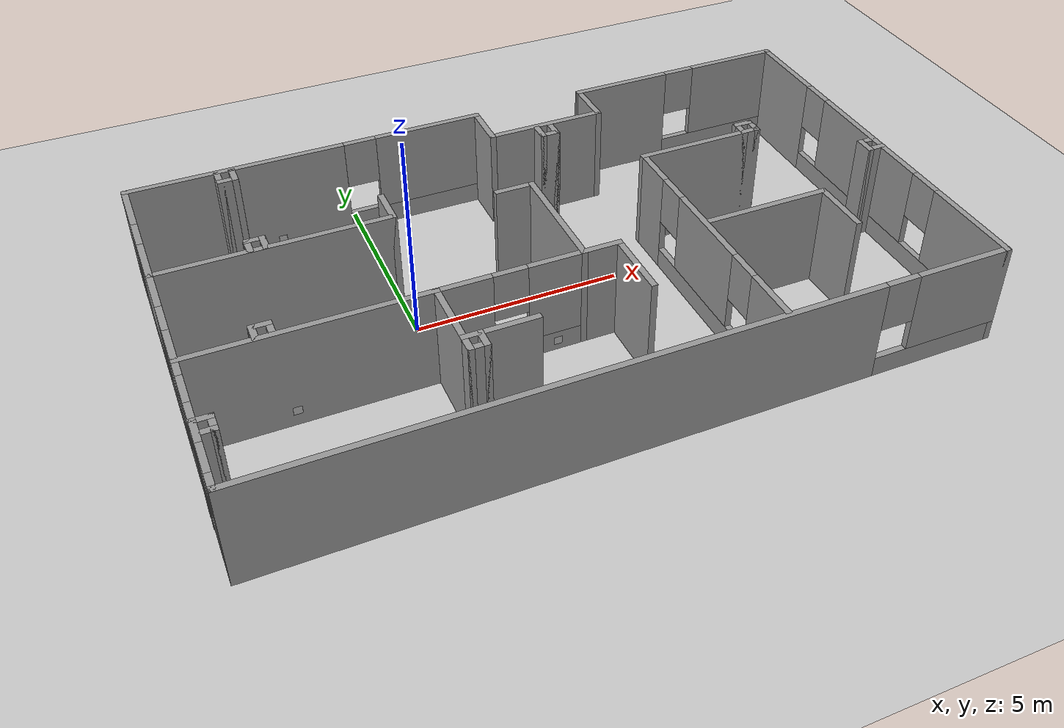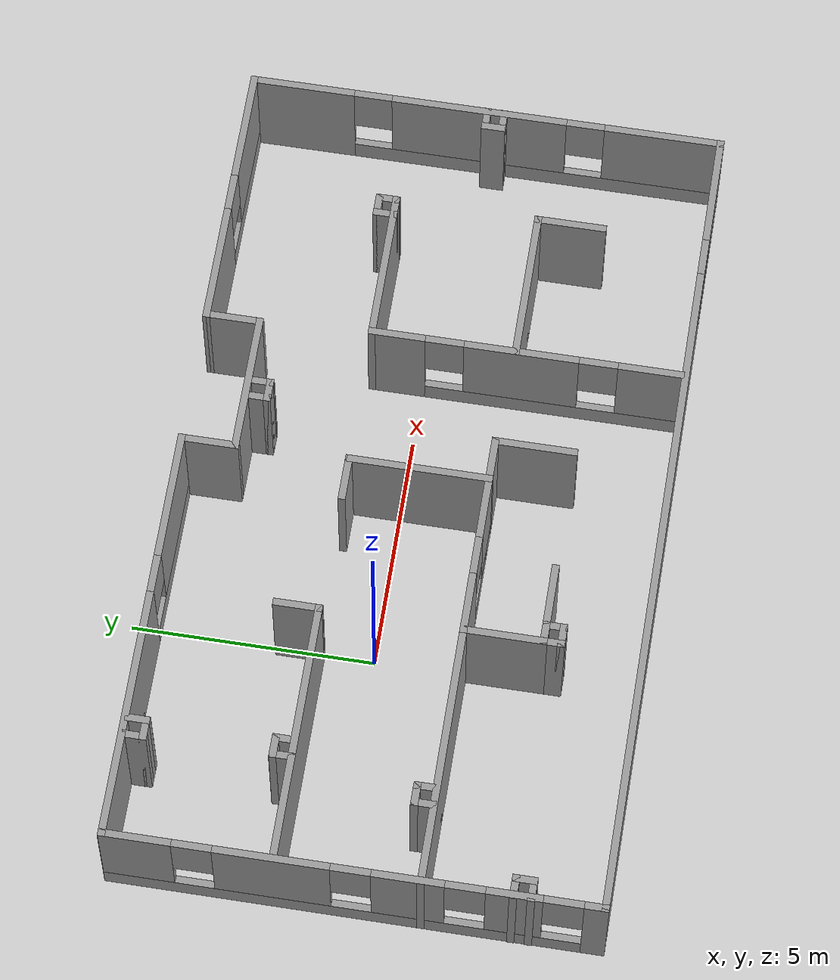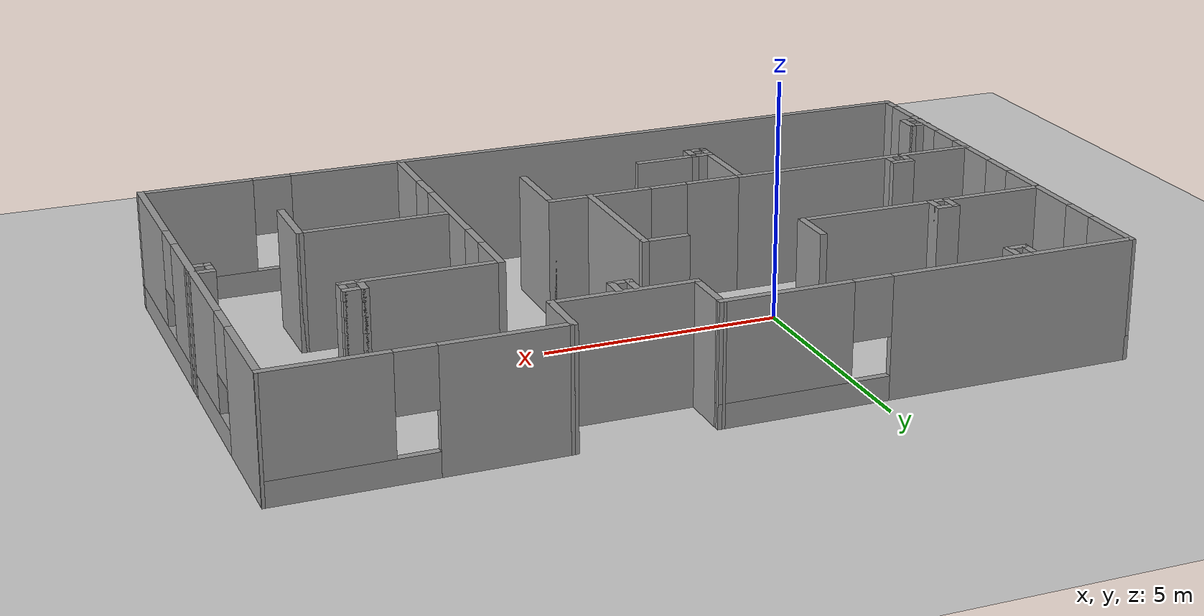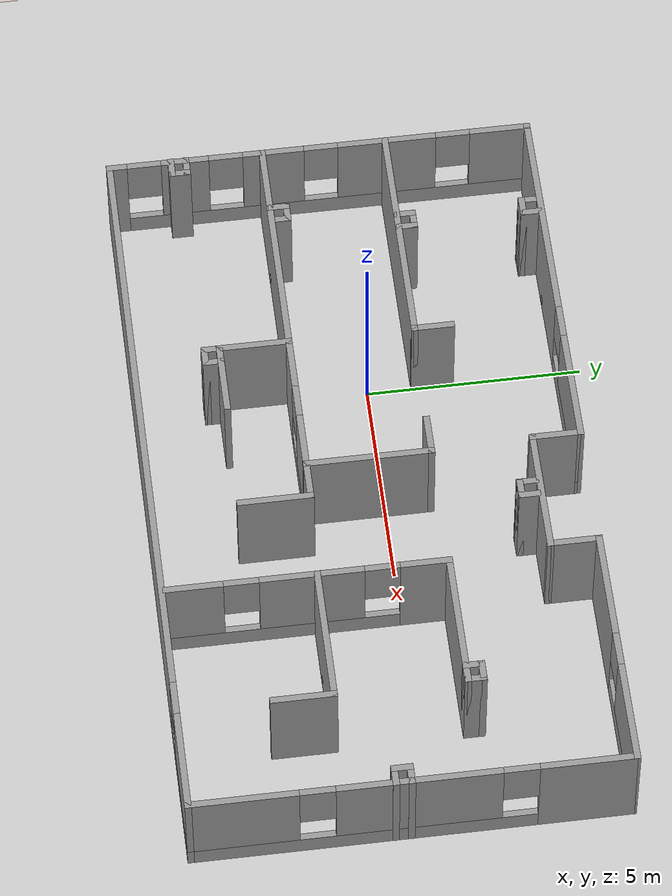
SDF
<sdf version="1.7">
 <world name="default">
  <light name="sun" type="directional">
   <pose>0 0 10 0 -0 0</pose>
   <diffuse>0.8 0.8 0.8 1</diffuse>
   <specular>0.2 0.2 0.2 1</specular>
   <attenuation>
    <range>1000</range>
    <constant>0.9</constant>
    <linear>0.01</linear>
    <quadratic>0.001</quadratic>
   </attenuation>
   <direction>-0.5 0.1 -0.9</direction>
   <spot><inner_angle>0</inner_angle><outer_angle>0</outer_angle><falloff>0</falloff></spot>
  </light>
  <model name="ground_plane">
   <static>1</static>
   <link name="link">
    <collision name="collision">
     <geometry><plane><normal>0 0 1</normal><size>100 100</size></plane></geometry>
     <surface>
      <contact><collide_bitmask>65535</collide_bitmask></contact>
      <friction><ode><mu>100</mu><mu2>50</mu2></ode></friction>
     </surface>
    </collision>
    <visual name="visual">
     <cast_shadows>0</cast_shadows>
     <geometry><plane><normal>0 0 1</normal><size>100 100</size></plane></geometry>
     <material>
      <script><uri>file://media/materials/scripts/gazebo.material</uri><name>Gazebo/Grey</name></script>
     </material>
    </visual>
   </link>
  </model>
  <gravity>0 0 -9.8</gravity>
  <magnetic_field>6e-06 2.3e-05 -4.2e-05</magnetic_field>
  <atmosphere type="adiabatic"/>
  <physics type="ode">
   <max_step_size>0.001</max_step_size>
   <real_time_factor>1</real_time_factor>
   <real_time_update_rate>1000</real_time_update_rate>
  </physics>
  <scene><ambient>0.4 0.4 0.4 1</ambient><background>0.7 0.7 0.7 1</background><shadows>1</shadows></scene>
  <spherical_coordinates>
   <surface_model>EARTH_WGS84</surface_model>
   <latitude_deg>0</latitude_deg>
   <longitude_deg>0</longitude_deg>
   <elevation>0</elevation>
   <heading_deg>0</heading_deg>
  </spherical_coordinates>
  <model name="casa2">
   <pose>3.15765 -0.469645 0 0 -0 0</pose>
   <link name="Wall_100">
    <collision name="Wall_100_Collision">
     <geometry><box><size>0.5 0.15 2.5</size></box></geometry>
     <pose>0 0 1.25 0 -0 0</pose>
    </collision>
    <visual name="Wall_100_Visual">
     <pose>0 0 1.25 0 -0 0</pose>
     <geometry><box><size>0.5 0.15 2.5</size></box></geometry>
     <material>
      <script><uri>file://media/materials/scripts/gazebo.material</uri><name>Gazebo/Grey</name></script>
      <ambient>1 1 1 1</ambient>
     </material>
     <meta><layer>0</layer></meta>
    </visual>
    <pose>8.20725 -0.199047 0 0 -0 -1.5708</pose>
   </link>
   <link name="Wall_101">
    <collision name="Wall_101_Collision">
     <geometry><box><size>0.5 0.15 2.5</size></box></geometry>
     <pose>0 0 1.25 0 -0 0</pose>
    </collision>
    <visual name="Wall_101_Visual">
     <pose>0 0 1.25 0 -0 0</pose>
     <geometry><box><size>0.5 0.15 2.5</size></box></geometry>
     <material>
      <script><uri>file://media/materials/scripts/gazebo.material</uri><name>Gazebo/Grey</name></script>
      <ambient>1 1 1 1</ambient>
     </material>
     <meta><layer>0</layer></meta>
    </visual>
    <pose>8.38226 -0.374047 0 0 -0 0</pose>
   </link>
   <link name="Wall_11">
    <collision name="Wall_11_Collision">
     <geometry><box><size>5.5 0.15 2.5</size></box></geometry>
     <pose>0 0 1.25 0 -0 0</pose>
    </collision>
    <visual name="Wall_11_Visual">
     <pose>0 0 1.25 0 -0 0</pose>
     <geometry><box><size>5.5 0.15 2.5</size></box></geometry>
     <material>
      <script><uri>file://media/materials/scripts/gazebo.material</uri><name>Gazebo/Grey</name></script>
      <ambient>1 1 1 1</ambient>
     </material>
     <meta><layer>0</layer></meta>
    </visual>
    <pose>-5.87087 1.56416 0 0 -0 0</pose>
   </link>
   <link name="Wall_12">
    <collision name="Wall_12_Collision">
     <geometry><box><size>1 0.15 2.5</size></box></geometry>
     <pose>0 0 1.25 0 -0 0</pose>
    </collision>
    <visual name="Wall_12_Visual">
     <pose>0 0 1.25 0 -0 0</pose>
     <geometry><box><size>1 0.15 2.5</size></box></geometry>
     <material>
      <script><uri>file://media/materials/scripts/gazebo.material</uri><name>Gazebo/Grey</name></script>
      <ambient>1 1 1 1</ambient>
     </material>
     <meta><layer>0</layer></meta>
    </visual>
    <pose>-3.19587 1.98916 0 0 -0 1.5708</pose>
   </link>
   <link name="Wall_14">
    <collision name="Wall_14_Collision">
     <geometry><box><size>5.5 0.15 2.5</size></box></geometry>
     <pose>0 0 1.25 0 -0 0</pose>
    </collision>
    <visual name="Wall_14_Visual">
     <pose>0 0 1.25 0 -0 0</pose>
     <geometry><box><size>5.5 0.15 2.5</size></box></geometry>
     <material>
      <script><uri>file://media/materials/scripts/gazebo.material</uri><name>Gazebo/Grey</name></script>
      <ambient>1 1 1 1</ambient>
     </material>
     <meta><layer>0</layer></meta>
    </visual>
    <pose>-5.87087 -1.33526 0 0 -0 0</pose>
   </link>
   <link name="Wall_15">
    <collision name="Wall_15_Collision">
     <geometry><box><size>1.75 0.15 2.5</size></box></geometry>
     <pose>0 0 1.25 0 -0 0</pose>
    </collision>
    <visual name="Wall_15_Visual">
     <pose>0 0 1.25 0 -0 0</pose>
     <geometry><box><size>1.75 0.15 2.5</size></box></geometry>
     <material>
      <script><uri>file://media/materials/scripts/gazebo.material</uri><name>Gazebo/Grey</name></script>
      <ambient>1 1 1 1</ambient>
     </material>
     <meta><layer>0</layer></meta>
    </visual>
    <pose>-3.19587 -2.13526 0 0 -0 -1.5708</pose>
   </link>
   <link name="Wall_2">
    <pose>-8.54587 -0.001289 0 0 -0 1.5708</pose>
    <visual name="Wall_2_Visual_0">
     <pose>-4.75843 0 1.25 0 -0 0</pose>
     <geometry><box><size>0.483134 0.15 2.5</size></box></geometry>
     <material>
      <script><uri>file://media/materials/scripts/gazebo.material</uri><name>Gazebo/Grey</name></script>
      <ambient>1 1 1 1</ambient>
     </material>
     <meta><layer>0</layer></meta>
    </visual>
    <collision name="Wall_2_Collision_0">
     <geometry><box><size>0.483134 0.15 2.5</size></box></geometry>
     <pose>-4.75843 0 1.25 0 -0 0</pose>
    </collision>
    <visual name="Wall_2_Visual_1">
     <pose>0.241567 0 0.25 0 -0 0</pose>
     <geometry><box><size>9.51687 0.15 0.5</size></box></geometry>
     <material>
      <script><uri>file://media/materials/scripts/gazebo.material</uri><name>Gazebo/Grey</name></script>
      <ambient>1 1 1 1</ambient>
     </material>
     <meta><layer>0</layer></meta>
    </visual>
    <collision name="Wall_2_Collision_1">
     <geometry><box><size>9.51687 0.15 0.5</size></box></geometry>
     <pose>0.241567 0 0.25 0 -0 0</pose>
    </collision>
    <visual name="Wall_2_Visual_2">
     <pose>-3.15695 0 1.5 0 -0 0</pose>
     <geometry><box><size>1.11984 0.15 2</size></box></geometry>
     <material>
      <script><uri>file://media/materials/scripts/gazebo.material</uri><name>Gazebo/Grey</name></script>
      <ambient>1 1 1 1</ambient>
     </material>
     <meta><layer>0</layer></meta>
    </visual>
    <collision name="Wall_2_Collision_2">
     <geometry><box><size>1.11984 0.15 2</size></box></geometry>
     <pose>-3.15695 0 1.5 0 -0 0</pose>
    </collision>
    <visual name="Wall_2_Visual_3">
     <pose>-1.07597 0 1.5 0 -0 0</pose>
     <geometry><box><size>1.44211 0.15 2</size></box></geometry>
     <material>
      <script><uri>file://media/materials/scripts/gazebo.material</uri><name>Gazebo/Grey</name></script>
      <ambient>1 1 1 1</ambient>
     </material>
     <meta><layer>0</layer></meta>
    </visual>
    <collision name="Wall_2_Collision_3">
     <geometry><box><size>1.44211 0.15 2</size></box></geometry>
     <pose>-1.07597 0 1.5 0 -0 0</pose>
    </collision>
    <visual name="Wall_2_Visual_4">
     <pose>1.60389 0 1.5 0 -0 0</pose>
     <geometry><box><size>2.3176 0.15 2</size></box></geometry>
     <material>
      <script><uri>file://media/materials/scripts/gazebo.material</uri><name>Gazebo/Grey</name></script>
      <ambient>1 1 1 1</ambient>
     </material>
     <meta><layer>0</layer></meta>
    </visual>
    <collision name="Wall_2_Collision_4">
     <geometry><box><size>2.3176 0.15 2</size></box></geometry>
     <pose>1.60389 0 1.5 0 -0 0</pose>
    </collision>
    <visual name="Wall_2_Visual_5">
     <pose>4.28134 0 1.5 0 -0 0</pose>
     <geometry><box><size>1.43731 0.15 2</size></box></geometry>
     <material>
      <script><uri>file://media/materials/scripts/gazebo.material</uri><name>Gazebo/Grey</name></script>
      <ambient>1 1 1 1</ambient>
     </material>
     <meta><layer>0</layer></meta>
    </visual>
    <collision name="Wall_2_Collision_5">
     <geometry><box><size>1.43731 0.15 2</size></box></geometry>
     <pose>4.28134 0 1.5 0 -0 0</pose>
    </collision>
    <visual name="Wall_2_Visual_6">
     <pose>-4.11687 0 1.9 0 -0 0</pose>
     <geometry><box><size>0.8 0.15 1.2</size></box></geometry>
     <material>
      <script><uri>file://media/materials/scripts/gazebo.material</uri><name>Gazebo/Grey</name></script>
      <ambient>1 1 1 1</ambient>
     </material>
     <meta><layer>0</layer></meta>
    </visual>
    <collision name="Wall_2_Collision_6">
     <geometry><box><size>0.8 0.15 1.2</size></box></geometry>
     <pose>-4.11687 0 1.9 0 -0 0</pose>
    </collision>
    <visual name="Wall_2_Visual_7">
     <pose>-2.19703 0 1.9 0 -0 0</pose>
     <geometry><box><size>0.8 0.15 1.2</size></box></geometry>
     <material>
      <script><uri>file://media/materials/scripts/gazebo.material</uri><name>Gazebo/Grey</name></script>
      <ambient>1 1 1 1</ambient>
     </material>
     <meta><layer>0</layer></meta>
    </visual>
    <collision name="Wall_2_Collision_7">
     <geometry><box><size>0.8 0.15 1.2</size></box></geometry>
     <pose>-2.19703 0 1.9 0 -0 0</pose>
    </collision>
    <visual name="Wall_2_Visual_8">
     <pose>0.045084 0 1.9 0 -0 0</pose>
     <geometry><box><size>0.8 0.15 1.2</size></box></geometry>
     <material>
      <script><uri>file://media/materials/scripts/gazebo.material</uri><name>Gazebo/Grey</name></script>
      <ambient>1 1 1 1</ambient>
     </material>
     <meta><layer>0</layer></meta>
    </visual>
    <collision name="Wall_2_Collision_8">
     <geometry><box><size>0.8 0.15 1.2</size></box></geometry>
     <pose>0.045084 0 1.9 0 -0 0</pose>
    </collision>
    <visual name="Wall_2_Visual_9">
     <pose>3.16269 0 1.9 0 -0 0</pose>
     <geometry><box><size>0.8 0.15 1.2</size></box></geometry>
     <material>
      <script><uri>file://media/materials/scripts/gazebo.material</uri><name>Gazebo/Grey</name></script>
      <ambient>1 1 1 1</ambient>
     </material>
     <meta><layer>0</layer></meta>
    </visual>
    <collision name="Wall_2_Collision_9">
     <geometry><box><size>0.8 0.15 1.2</size></box></geometry>
     <pose>3.16269 0 1.9 0 -0 0</pose>
    </collision>
   </link>
   <link name="Wall_28">
    <pose>-1.52087 -1.33526 0 0 -0 0</pose>
    <visual name="Wall_28_Visual_0">
     <pose>-1.0938 0 1.25 0 -0 0</pose>
     <geometry><box><size>1.3124 0.15 2.5</size></box></geometry>
     <material>
      <script><uri>file://media/materials/scripts/gazebo.material</uri><name>Gazebo/Grey</name></script>
      <ambient>1 1 1 1</ambient>
     </material>
     <meta><layer>0</layer></meta>
    </visual>
    <collision name="Wall_28_Collision_0">
     <geometry><box><size>1.3124 0.15 2.5</size></box></geometry>
     <pose>-1.0938 0 1.25 0 -0 0</pose>
    </collision>
    <visual name="Wall_28_Visual_1">
     <pose>0.6562 0 0.25 0 -0 0</pose>
     <geometry><box><size>2.1876 0.15 0.5</size></box></geometry>
     <material>
      <script><uri>file://media/materials/scripts/gazebo.material</uri><name>Gazebo/Grey</name></script>
      <ambient>1 1 1 1</ambient>
     </material>
     <meta><layer>0</layer></meta>
    </visual>
    <collision name="Wall_28_Collision_1">
     <geometry><box><size>2.1876 0.15 0.5</size></box></geometry>
     <pose>0.6562 0 0.25 0 -0 0</pose>
    </collision>
    <visual name="Wall_28_Visual_2">
     <pose>1.0562 0 1.5 0 -0 0</pose>
     <geometry><box><size>1.3876 0.15 2</size></box></geometry>
     <material>
      <script><uri>file://media/materials/scripts/gazebo.material</uri><name>Gazebo/Grey</name></script>
      <ambient>1 1 1 1</ambient>
     </material>
     <meta><layer>0</layer></meta>
    </visual>
    <collision name="Wall_28_Collision_2">
     <geometry><box><size>1.3876 0.15 2</size></box></geometry>
     <pose>1.0562 0 1.5 0 -0 0</pose>
    </collision>
    <visual name="Wall_28_Visual_3">
     <pose>-0.037599 0 1.9 0 -0 0</pose>
     <geometry><box><size>0.8 0.15 1.2</size></box></geometry>
     <material>
      <script><uri>file://media/materials/scripts/gazebo.material</uri><name>Gazebo/Grey</name></script>
      <ambient>1 1 1 1</ambient>
     </material>
     <meta><layer>0</layer></meta>
    </visual>
    <collision name="Wall_28_Collision_3">
     <geometry><box><size>0.8 0.15 1.2</size></box></geometry>
     <pose>-0.037599 0 1.9 0 -0 0</pose>
    </collision>
   </link>
   <link name="Wall_29">
    <collision name="Wall_29_Collision">
     <geometry><box><size>3 0.15 2.5</size></box></geometry>
     <pose>0 0 1.25 0 -0 0</pose>
    </collision>
    <visual name="Wall_29_Visual">
     <pose>0 0 1.25 0 -0 0</pose>
     <geometry><box><size>3 0.15 2.5</size></box></geometry>
     <material>
      <script><uri>file://media/materials/scripts/gazebo.material</uri><name>Gazebo/Grey</name></script>
      <ambient>1 1 1 1</ambient>
     </material>
     <meta><layer>0</layer></meta>
    </visual>
    <pose>0.154131 0.089738 0 0 -0 1.5708</pose>
   </link>
   <link name="Wall_31">
    <collision name="Wall_31_Collision">
     <geometry><box><size>1.25 0.15 2.5</size></box></geometry>
     <pose>0 0 1.25 0 -0 0</pose>
    </collision>
    <visual name="Wall_31_Visual">
     <pose>0 0 1.25 0 -0 0</pose>
     <geometry><box><size>1.25 0.15 2.5</size></box></geometry>
     <material>
      <script><uri>file://media/materials/scripts/gazebo.material</uri><name>Gazebo/Grey</name></script>
      <ambient>1 1 1 1</ambient>
     </material>
     <meta><layer>0</layer></meta>
    </visual>
    <pose>0.08046 4.37625 0 0 -0 -1.5708</pose>
   </link>
   <link name="Wall_35">
    <pose>3.07601 -1.64851 0 0 -0 -1.5708</pose>
    <visual name="Wall_35_Visual_0">
     <pose>-2.66037 0 1.25 0 -0 0</pose>
     <geometry><box><size>1.17926 0.15 2.5</size></box></geometry>
     <material>
      <script><uri>file://media/materials/scripts/gazebo.material</uri><name>Gazebo/Grey</name></script>
      <ambient>1 1 1 1</ambient>
     </material>
     <meta><layer>0</layer></meta>
    </visual>
    <collision name="Wall_35_Collision_0">
     <geometry><box><size>1.17926 0.15 2.5</size></box></geometry>
     <pose>-2.66037 0 1.25 0 -0 0</pose>
    </collision>
    <visual name="Wall_35_Visual_1">
     <pose>0.589632 0 0.25 0 -0 0</pose>
     <geometry><box><size>5.32074 0.15 0.5</size></box></geometry>
     <material>
      <script><uri>file://media/materials/scripts/gazebo.material</uri><name>Gazebo/Grey</name></script>
      <ambient>1 1 1 1</ambient>
     </material>
     <meta><layer>0</layer></meta>
    </visual>
    <collision name="Wall_35_Collision_1">
     <geometry><box><size>5.32074 0.15 0.5</size></box></geometry>
     <pose>0.589632 0 0.25 0 -0 0</pose>
    </collision>
    <visual name="Wall_35_Visual_2">
     <pose>-0.08629 0 1.5 0 -0 0</pose>
     <geometry><box><size>2.36889 0.15 2</size></box></geometry>
     <material>
      <script><uri>file://media/materials/scripts/gazebo.material</uri><name>Gazebo/Grey</name></script>
      <ambient>1 1 1 1</ambient>
     </material>
     <meta><layer>0</layer></meta>
    </visual>
    <collision name="Wall_35_Collision_2">
     <geometry><box><size>2.36889 0.15 2</size></box></geometry>
     <pose>-0.08629 0 1.5 0 -0 0</pose>
    </collision>
    <visual name="Wall_35_Visual_3">
     <pose>2.57408 0 1.5 0 -0 0</pose>
     <geometry><box><size>1.35184 0.15 2</size></box></geometry>
     <material>
      <script><uri>file://media/materials/scripts/gazebo.material</uri><name>Gazebo/Grey</name></script>
      <ambient>1 1 1 1</ambient>
     </material>
     <meta><layer>0</layer></meta>
    </visual>
    <collision name="Wall_35_Collision_3">
     <geometry><box><size>1.35184 0.15 2</size></box></geometry>
     <pose>2.57408 0 1.5 0 -0 0</pose>
    </collision>
    <visual name="Wall_35_Visual_4">
     <pose>-1.67074 0 1.9 0 -0 0</pose>
     <geometry><box><size>0.8 0.15 1.2</size></box></geometry>
     <material>
      <script><uri>file://media/materials/scripts/gazebo.material</uri><name>Gazebo/Grey</name></script>
      <ambient>1 1 1 1</ambient>
     </material>
     <meta><layer>0</layer></meta>
    </visual>
    <collision name="Wall_35_Collision_4">
     <geometry><box><size>0.8 0.15 1.2</size></box></geometry>
     <pose>-1.67074 0 1.9 0 -0 0</pose>
    </collision>
    <visual name="Wall_35_Visual_5">
     <pose>1.49816 0 1.9 0 -0 0</pose>
     <geometry><box><size>0.8 0.15 1.2</size></box></geometry>
     <material>
      <script><uri>file://media/materials/scripts/gazebo.material</uri><name>Gazebo/Grey</name></script>
      <ambient>1 1 1 1</ambient>
     </material>
     <meta><layer>0</layer></meta>
    </visual>
    <collision name="Wall_35_Collision_5">
     <geometry><box><size>0.8 0.15 1.2</size></box></geometry>
     <pose>1.49816 0 1.9 0 -0 0</pose>
    </collision>
   </link>
   <link name="Wall_38">
    <collision name="Wall_38_Collision">
     <geometry><box><size>1 0.15 2.5</size></box></geometry>
     <pose>0 0 1.25 0 -0 0</pose>
    </collision>
    <visual name="Wall_38_Visual">
     <pose>0 0 1.25 0 -0 0</pose>
     <geometry><box><size>1 0.15 2.5</size></box></geometry>
     <material>
      <script><uri>file://media/materials/scripts/gazebo.material</uri><name>Gazebo/Grey</name></script>
      <ambient>1 1 1 1</ambient>
     </material>
     <meta><layer>0</layer></meta>
    </visual>
    <pose>0.579131 -1.33526 0 0 -0 0</pose>
   </link>
   <link name="Wall_39">
    <collision name="Wall_39_Collision">
     <geometry><box><size>1.75 0.15 2.5</size></box></geometry>
     <pose>0 0 1.25 0 -0 0</pose>
    </collision>
    <visual name="Wall_39_Visual">
     <pose>0 0 1.25 0 -0 0</pose>
     <geometry><box><size>1.75 0.15 2.5</size></box></geometry>
     <material>
      <script><uri>file://media/materials/scripts/gazebo.material</uri><name>Gazebo/Grey</name></script>
      <ambient>1 1 1 1</ambient>
     </material>
     <meta><layer>0</layer></meta>
    </visual>
    <pose>1.00413 -2.13526 0 0 -0 -1.5708</pose>
   </link>
   <link name="Wall_41">
    <collision name="Wall_41_Collision">
     <geometry><box><size>1.75 0.15 2.5</size></box></geometry>
     <pose>0 0 1.25 0 -0 0</pose>
    </collision>
    <visual name="Wall_41_Visual">
     <pose>0 0 1.25 0 -0 0</pose>
     <geometry><box><size>1.75 0.15 2.5</size></box></geometry>
     <material>
      <script><uri>file://media/materials/scripts/gazebo.material</uri><name>Gazebo/Grey</name></script>
      <ambient>1 1 1 1</ambient>
     </material>
     <meta><layer>0</layer></meta>
    </visual>
    <pose>-2.39587 -2.93526 0 0 -0 0</pose>
   </link>
   <link name="Wall_43">
    <collision name="Wall_43_Collision">
     <geometry><box><size>3.25 0.15 2.5</size></box></geometry>
     <pose>0 0 1.25 0 -0 0</pose>
    </collision>
    <visual name="Wall_43_Visual">
     <pose>0 0 1.25 0 -0 0</pose>
     <geometry><box><size>3.25 0.15 2.5</size></box></geometry>
     <material>
      <script><uri>file://media/materials/scripts/gazebo.material</uri><name>Gazebo/Grey</name></script>
      <ambient>1 1 1 1</ambient>
     </material>
     <meta><layer>0</layer></meta>
    </visual>
    <pose>4.62601 1.52649 0 0 -0 0</pose>
   </link>
   <link name="Wall_45">
    <collision name="Wall_45_Collision">
     <geometry><box><size>1 0.15 2.5</size></box></geometry>
     <pose>0 0 1.25 0 -0 0</pose>
    </collision>
    <visual name="Wall_45_Visual">
     <pose>0 0 1.25 0 -0 0</pose>
     <geometry><box><size>1 0.15 2.5</size></box></geometry>
     <material>
      <script><uri>file://media/materials/scripts/gazebo.material</uri><name>Gazebo/Grey</name></script>
      <ambient>1 1 1 1</ambient>
     </material>
     <meta><layer>0</layer></meta>
    </visual>
    <pose>-0.270869 1.51474 0 0 -0 3.14159</pose>
   </link>
   <link name="Wall_54">
    <collision name="Wall_54_Collision">
     <geometry><box><size>3 0.15 2.5</size></box></geometry>
     <pose>0 0 1.25 0 -0 0</pose>
    </collision>
    <visual name="Wall_54_Visual">
     <pose>0 0 1.25 0 -0 0</pose>
     <geometry><box><size>3 0.15 2.5</size></box></geometry>
     <material>
      <script><uri>file://media/materials/scripts/gazebo.material</uri><name>Gazebo/Grey</name></script>
      <ambient>1 1 1 1</ambient>
     </material>
     <meta><layer>0</layer></meta>
    </visual>
    <pose>1.50546 3.82626 0 0 -0 0</pose>
   </link>
   <link name="Wall_55">
    <collision name="Wall_55_Collision">
     <geometry><box><size>1.25 0.15 2.5</size></box></geometry>
     <pose>0 0 1.25 0 -0 0</pose>
    </collision>
    <visual name="Wall_55_Visual">
     <pose>0 0 1.25 0 -0 0</pose>
     <geometry><box><size>1.25 0.15 2.5</size></box></geometry>
     <material>
      <script><uri>file://media/materials/scripts/gazebo.material</uri><name>Gazebo/Grey</name></script>
      <ambient>1 1 1 1</ambient>
     </material>
     <meta><layer>0</layer></meta>
    </visual>
    <pose>2.93046 4.37625 0 0 -0 1.5708</pose>
   </link>
   <link name="Wall_57">
    <pose>-4.2327 4.92498 0 0 -0 0.000295</pose>
    <visual name="Wall_57_Visual_0">
     <pose>-1.76245 0 1.25 0 -0 0</pose>
     <geometry><box><size>5.25143 0.15 2.5</size></box></geometry>
     <material>
      <script><uri>file://media/materials/scripts/gazebo.material</uri><name>Gazebo/Grey</name></script>
      <ambient>1 1 1 1</ambient>
     </material>
     <meta><layer>0</layer></meta>
    </visual>
    <collision name="Wall_57_Collision_0">
     <geometry><box><size>5.25143 0.15 2.5</size></box></geometry>
     <pose>-1.76245 0 1.25 0 -0 0</pose>
    </collision>
    <visual name="Wall_57_Visual_1">
     <pose>2.62571 0 0.25 0 -0 0</pose>
     <geometry><box><size>3.5249 0.15 0.5</size></box></geometry>
     <material>
      <script><uri>file://media/materials/scripts/gazebo.material</uri><name>Gazebo/Grey</name></script>
      <ambient>1 1 1 1</ambient>
     </material>
     <meta><layer>0</layer></meta>
    </visual>
    <collision name="Wall_57_Collision_1">
     <geometry><box><size>3.5249 0.15 0.5</size></box></geometry>
     <pose>2.62571 0 0.25 0 -0 0</pose>
    </collision>
    <visual name="Wall_57_Visual_2">
     <pose>3.02571 0 1.5 0 -0 0</pose>
     <geometry><box><size>2.7249 0.15 2</size></box></geometry>
     <material>
      <script><uri>file://media/materials/scripts/gazebo.material</uri><name>Gazebo/Grey</name></script>
      <ambient>1 1 1 1</ambient>
     </material>
     <meta><layer>0</layer></meta>
    </visual>
    <collision name="Wall_57_Collision_2">
     <geometry><box><size>2.7249 0.15 2</size></box></geometry>
     <pose>3.02571 0 1.5 0 -0 0</pose>
    </collision>
    <visual name="Wall_57_Visual_3">
     <pose>1.26326 0 1.9 0 -0 0</pose>
     <geometry><box><size>0.8 0.15 1.2</size></box></geometry>
     <material>
      <script><uri>file://media/materials/scripts/gazebo.material</uri><name>Gazebo/Grey</name></script>
      <ambient>1 1 1 1</ambient>
     </material>
     <meta><layer>0</layer></meta>
    </visual>
    <collision name="Wall_57_Collision_3">
     <geometry><box><size>0.8 0.15 1.2</size></box></geometry>
     <pose>1.26326 0 1.9 0 -0 0</pose>
    </collision>
   </link>
   <link name="Wall_59">
    <pose>5.7423 4.92498 0 0 -0 -0.000452</pose>
    <visual name="Wall_59_Visual_0">
     <pose>-1.60453 0 1.25 0 -0 0</pose>
     <geometry><box><size>2.56462 0.15 2.5</size></box></geometry>
     <material>
      <script><uri>file://media/materials/scripts/gazebo.material</uri><name>Gazebo/Grey</name></script>
      <ambient>1 1 1 1</ambient>
     </material>
     <meta><layer>0</layer></meta>
    </visual>
    <collision name="Wall_59_Collision_0">
     <geometry><box><size>2.56462 0.15 2.5</size></box></geometry>
     <pose>-1.60453 0 1.25 0 -0 0</pose>
    </collision>
    <visual name="Wall_59_Visual_1">
     <pose>1.28231 0 0.25 0 -0 0</pose>
     <geometry><box><size>3.20905 0.15 0.5</size></box></geometry>
     <material>
      <script><uri>file://media/materials/scripts/gazebo.material</uri><name>Gazebo/Grey</name></script>
      <ambient>1 1 1 1</ambient>
     </material>
     <meta><layer>0</layer></meta>
    </visual>
    <collision name="Wall_59_Collision_1">
     <geometry><box><size>3.20905 0.15 0.5</size></box></geometry>
     <pose>1.28231 0 0.25 0 -0 0</pose>
    </collision>
    <visual name="Wall_59_Visual_2">
     <pose>1.68231 0 1.5 0 -0 0</pose>
     <geometry><box><size>2.40905 0.15 2</size></box></geometry>
     <material>
      <script><uri>file://media/materials/scripts/gazebo.material</uri><name>Gazebo/Grey</name></script>
      <ambient>1 1 1 1</ambient>
     </material>
     <meta><layer>0</layer></meta>
    </visual>
    <collision name="Wall_59_Collision_2">
     <geometry><box><size>2.40905 0.15 2</size></box></geometry>
     <pose>1.68231 0 1.5 0 -0 0</pose>
    </collision>
    <visual name="Wall_59_Visual_3">
     <pose>0.077785 0 1.9 0 -0 0</pose>
     <geometry><box><size>0.8 0.15 1.2</size></box></geometry>
     <material>
      <script><uri>file://media/materials/scripts/gazebo.material</uri><name>Gazebo/Grey</name></script>
      <ambient>1 1 1 1</ambient>
     </material>
     <meta><layer>0</layer></meta>
    </visual>
    <collision name="Wall_59_Collision_3">
     <geometry><box><size>0.8 0.15 1.2</size></box></geometry>
     <pose>0.077785 0 1.9 0 -0 0</pose>
    </collision>
   </link>
   <link name="Wall_63">
    <collision name="Wall_63_Collision">
     <geometry><box><size>3.25 0.15 2.5</size></box></geometry>
     <pose>0 0 1.25 0 -0 0</pose>
    </collision>
    <visual name="Wall_63_Visual">
     <pose>0 0 1.25 0 -0 0</pose>
     <geometry><box><size>3.25 0.15 2.5</size></box></geometry>
     <material>
      <script><uri>file://media/materials/scripts/gazebo.material</uri><name>Gazebo/Grey</name></script>
      <ambient>1 1 1 1</ambient>
     </material>
     <meta><layer>0</layer></meta>
    </visual>
    <pose>4.62852 -1.43934 0 0 -0 0</pose>
   </link>
   <link name="Wall_64">
    <collision name="Wall_64_Collision">
     <geometry><box><size>1.5 0.15 2.5</size></box></geometry>
     <pose>0 0 1.25 0 -0 0</pose>
    </collision>
    <visual name="Wall_64_Visual">
     <pose>0 0 1.25 0 -0 0</pose>
     <geometry><box><size>1.5 0.15 2.5</size></box></geometry>
     <material>
      <script><uri>file://media/materials/scripts/gazebo.material</uri><name>Gazebo/Grey</name></script>
      <ambient>1 1 1 1</ambient>
     </material>
     <meta><layer>0</layer></meta>
    </visual>
    <pose>6.17852 -2.11434 0 0 -0 -1.5708</pose>
   </link>
   <link name="Wall_66">
    <collision name="Wall_66_Collision">
     <geometry><box><size>0.5 0.15 2.5</size></box></geometry>
     <pose>0 0 1.25 0 -0 0</pose>
    </collision>
    <visual name="Wall_66_Visual">
     <pose>0 0 1.25 0 -0 0</pose>
     <geometry><box><size>0.5 0.15 2.5</size></box></geometry>
     <material>
      <script><uri>file://media/materials/scripts/gazebo.material</uri><name>Gazebo/Grey</name></script>
      <ambient>1 1 1 1</ambient>
     </material>
     <meta><layer>0</layer></meta>
    </visual>
    <pose>-6.96142 -1.12983 0 0 -0 -1.5708</pose>
   </link>
   <link name="Wall_68">
    <collision name="Wall_68_Collision">
     <geometry><box><size>0.5 0.15 2.5</size></box></geometry>
     <pose>0 0 1.25 0 -0 0</pose>
    </collision>
    <visual name="Wall_68_Visual">
     <pose>0 0 1.25 0 -0 0</pose>
     <geometry><box><size>0.5 0.15 2.5</size></box></geometry>
     <material>
      <script><uri>file://media/materials/scripts/gazebo.material</uri><name>Gazebo/Grey</name></script>
      <ambient>1 1 1 1</ambient>
     </material>
     <meta><layer>0</layer></meta>
    </visual>
    <pose>-6.78642 -0.954825 0 0 -0 0</pose>
   </link>
   <link name="Wall_7">
    <pose>8.55413 -0.001289 0 0 -0 -1.5708</pose>
    <visual name="Wall_7_Visual_0">
     <pose>-3.89543 0 1.25 0 -0 0</pose>
     <geometry><box><size>2.20913 0.15 2.5</size></box></geometry>
     <material>
      <script><uri>file://media/materials/scripts/gazebo.material</uri><name>Gazebo/Grey</name></script>
      <ambient>1 1 1 1</ambient>
     </material>
     <meta><layer>0</layer></meta>
    </visual>
    <collision name="Wall_7_Collision_0">
     <geometry><box><size>2.20913 0.15 2.5</size></box></geometry>
     <pose>-3.89543 0 1.25 0 -0 0</pose>
    </collision>
    <visual name="Wall_7_Visual_1">
     <pose>1.10457 0 0.25 0 -0 0</pose>
     <geometry><box><size>7.79087 0.15 0.5</size></box></geometry>
     <material>
      <script><uri>file://media/materials/scripts/gazebo.material</uri><name>Gazebo/Grey</name></script>
      <ambient>1 1 1 1</ambient>
     </material>
     <meta><layer>0</layer></meta>
    </visual>
    <collision name="Wall_7_Collision_1">
     <geometry><box><size>7.79087 0.15 0.5</size></box></geometry>
     <pose>1.10457 0 0.25 0 -0 0</pose>
    </collision>
    <visual name="Wall_7_Visual_2">
     <pose>-0.148207 0 1.5 0 -0 0</pose>
     <geometry><box><size>3.68533 0.15 2</size></box></geometry>
     <material>
      <script><uri>file://media/materials/scripts/gazebo.material</uri><name>Gazebo/Grey</name></script>
      <ambient>1 1 1 1</ambient>
     </material>
     <meta><layer>0</layer></meta>
    </visual>
    <collision name="Wall_7_Collision_2">
     <geometry><box><size>3.68533 0.15 2</size></box></geometry>
     <pose>-0.148207 0 1.5 0 -0 0</pose>
    </collision>
    <visual name="Wall_7_Visual_3">
     <pose>3.74723 0 1.5 0 -0 0</pose>
     <geometry><box><size>2.50554 0.15 2</size></box></geometry>
     <material>
      <script><uri>file://media/materials/scripts/gazebo.material</uri><name>Gazebo/Grey</name></script>
      <ambient>1 1 1 1</ambient>
     </material>
     <meta><layer>0</layer></meta>
    </visual>
    <collision name="Wall_7_Collision_3">
     <geometry><box><size>2.50554 0.15 2</size></box></geometry>
     <pose>3.74723 0 1.5 0 -0 0</pose>
    </collision>
    <visual name="Wall_7_Visual_4">
     <pose>-2.39087 0 1.9 0 -0 0</pose>
     <geometry><box><size>0.8 0.15 1.2</size></box></geometry>
     <material>
      <script><uri>file://media/materials/scripts/gazebo.material</uri><name>Gazebo/Grey</name></script>
      <ambient>1 1 1 1</ambient>
     </material>
     <meta><layer>0</layer></meta>
    </visual>
    <collision name="Wall_7_Collision_4">
     <geometry><box><size>0.8 0.15 1.2</size></box></geometry>
     <pose>-2.39087 0 1.9 0 -0 0</pose>
    </collision>
    <visual name="Wall_7_Visual_5">
     <pose>2.09446 0 1.9 0 -0 0</pose>
     <geometry><box><size>0.8 0.15 1.2</size></box></geometry>
     <material>
      <script><uri>file://media/materials/scripts/gazebo.material</uri><name>Gazebo/Grey</name></script>
      <ambient>1 1 1 1</ambient>
     </material>
     <meta><layer>0</layer></meta>
    </visual>
    <collision name="Wall_7_Collision_5">
     <geometry><box><size>0.8 0.15 1.2</size></box></geometry>
     <pose>2.09446 0 1.9 0 -0 0</pose>
    </collision>
   </link>
   <link name="Wall_70">
    <collision name="Wall_70_Collision">
     <geometry><box><size>0.5 0.15 2.5</size></box></geometry>
     <pose>0 0 1.25 0 -0 0</pose>
    </collision>
    <visual name="Wall_70_Visual">
     <pose>0 0 1.25 0 -0 0</pose>
     <geometry><box><size>0.5 0.15 2.5</size></box></geometry>
     <material>
      <script><uri>file://media/materials/scripts/gazebo.material</uri><name>Gazebo/Grey</name></script>
      <ambient>1 1 1 1</ambient>
     </material>
     <meta><layer>0</layer></meta>
    </visual>
    <pose>-6.61142 -1.12983 0 0 -0 -1.5708</pose>
   </link>
   <link name="Wall_72">
    <collision name="Wall_72_Collision">
     <geometry><box><size>0.5 0.15 2.5</size></box></geometry>
     <pose>0 0 1.25 0 -0 0</pose>
    </collision>
    <visual name="Wall_72_Visual">
     <pose>0 0 1.25 0 -0 0</pose>
     <geometry><box><size>0.5 0.15 2.5</size></box></geometry>
     <material>
      <script><uri>file://media/materials/scripts/gazebo.material</uri><name>Gazebo/Grey</name></script>
      <ambient>1 1 1 1</ambient>
     </material>
     <meta><layer>0</layer></meta>
    </visual>
    <pose>1.23805 3.54958 0 0 -0 -1.5708</pose>
   </link>
   <link name="Wall_73">
    <collision name="Wall_73_Collision">
     <geometry><box><size>0.5 0.15 2.5</size></box></geometry>
     <pose>0 0 1.25 0 -0 0</pose>
    </collision>
    <visual name="Wall_73_Visual">
     <pose>0 0 1.25 0 -0 0</pose>
     <geometry><box><size>0.5 0.15 2.5</size></box></geometry>
     <material>
      <script><uri>file://media/materials/scripts/gazebo.material</uri><name>Gazebo/Grey</name></script>
      <ambient>1 1 1 1</ambient>
     </material>
     <meta><layer>0</layer></meta>
    </visual>
    <pose>1.41305 3.37458 0 0 -0 0</pose>
   </link>
   <link name="Wall_74">
    <collision name="Wall_74_Collision">
     <geometry><box><size>0.5 0.15 2.5</size></box></geometry>
     <pose>0 0 1.25 0 -0 0</pose>
    </collision>
    <visual name="Wall_74_Visual">
     <pose>0 0 1.25 0 -0 0</pose>
     <geometry><box><size>0.5 0.15 2.5</size></box></geometry>
     <material>
      <script><uri>file://media/materials/scripts/gazebo.material</uri><name>Gazebo/Grey</name></script>
      <ambient>1 1 1 1</ambient>
     </material>
     <meta><layer>0</layer></meta>
    </visual>
    <pose>1.58805 3.54958 0 0 -0 1.5708</pose>
   </link>
   <link name="Wall_76">
    <collision name="Wall_76_Collision">
     <geometry><box><size>0.5 0.15 2.5</size></box></geometry>
     <pose>0 0 1.25 0 -0 0</pose>
    </collision>
    <visual name="Wall_76_Visual">
     <pose>0 0 1.25 0 -0 0</pose>
     <geometry><box><size>0.5 0.15 2.5</size></box></geometry>
     <material>
      <script><uri>file://media/materials/scripts/gazebo.material</uri><name>Gazebo/Grey</name></script>
      <ambient>1 1 1 1</ambient>
     </material>
     <meta><layer>0</layer></meta>
    </visual>
    <pose>-3.19587 -3.11026 0 0 -0 -1.5708</pose>
   </link>
   <link name="Wall_77">
    <collision name="Wall_77_Collision">
     <geometry><box><size>0.5 0.15 2.5</size></box></geometry>
     <pose>0 0 1.25 0 -0 0</pose>
    </collision>
    <visual name="Wall_77_Visual">
     <pose>0 0 1.25 0 -0 0</pose>
     <geometry><box><size>0.5 0.15 2.5</size></box></geometry>
     <material>
      <script><uri>file://media/materials/scripts/gazebo.material</uri><name>Gazebo/Grey</name></script>
      <ambient>1 1 1 1</ambient>
     </material>
     <meta><layer>0</layer></meta>
    </visual>
    <pose>-3.02087 -3.28526 0 0 -0 0</pose>
   </link>
   <link name="Wall_78">
    <collision name="Wall_78_Collision">
     <geometry><box><size>0.5 0.15 2.5</size></box></geometry>
     <pose>0 0 1.25 0 -0 0</pose>
    </collision>
    <visual name="Wall_78_Visual">
     <pose>0 0 1.25 0 -0 0</pose>
     <geometry><box><size>0.5 0.15 2.5</size></box></geometry>
     <material>
      <script><uri>file://media/materials/scripts/gazebo.material</uri><name>Gazebo/Grey</name></script>
      <ambient>1 1 1 1</ambient>
     </material>
     <meta><layer>0</layer></meta>
    </visual>
    <pose>-2.84587 -3.11026 0 0 -0 1.5708</pose>
   </link>
   <link name="Wall_80">
    <collision name="Wall_80_Collision">
     <geometry><box><size>0.5 0.15 2.5</size></box></geometry>
     <pose>0 0 1.25 0 -0 0</pose>
    </collision>
    <visual name="Wall_80_Visual">
     <pose>0 0 1.25 0 -0 0</pose>
     <geometry><box><size>0.5 0.15 2.5</size></box></geometry>
     <material>
      <script><uri>file://media/materials/scripts/gazebo.material</uri><name>Gazebo/Grey</name></script>
      <ambient>1 1 1 1</ambient>
     </material>
     <meta><layer>0</layer></meta>
    </visual>
    <pose>-8.38226 -3.13415 0 0 -0 0</pose>
   </link>
   <link name="Wall_81">
    <collision name="Wall_81_Collision">
     <geometry><box><size>0.5 0.15 2.5</size></box></geometry>
     <pose>0 0 1.25 0 -0 0</pose>
    </collision>
    <visual name="Wall_81_Visual">
     <pose>0 0 1.25 0 -0 0</pose>
     <geometry><box><size>0.5 0.15 2.5</size></box></geometry>
     <material>
      <script><uri>file://media/materials/scripts/gazebo.material</uri><name>Gazebo/Grey</name></script>
      <ambient>1 1 1 1</ambient>
     </material>
     <meta><layer>0</layer></meta>
    </visual>
    <pose>-8.20725 -3.30915 0 0 -0 -1.5708</pose>
   </link>
   <link name="Wall_82">
    <collision name="Wall_82_Collision">
     <geometry><box><size>0.5 0.15 2.5</size></box></geometry>
     <pose>0 0 1.25 0 -0 0</pose>
    </collision>
    <visual name="Wall_82_Visual">
     <pose>0 0 1.25 0 -0 0</pose>
     <geometry><box><size>0.5 0.15 2.5</size></box></geometry>
     <material>
      <script><uri>file://media/materials/scripts/gazebo.material</uri><name>Gazebo/Grey</name></script>
      <ambient>1 1 1 1</ambient>
     </material>
     <meta><layer>0</layer></meta>
    </visual>
    <pose>-8.38226 -3.48415 0 0 -0 3.14159</pose>
   </link>
   <link name="Wall_84">
    <collision name="Wall_84_Collision">
     <geometry><box><size>0.5 0.15 2.5</size></box></geometry>
     <pose>0 0 1.25 0 -0 0</pose>
    </collision>
    <visual name="Wall_84_Visual">
     <pose>0 0 1.25 0 -0 0</pose>
     <geometry><box><size>0.5 0.15 2.5</size></box></geometry>
     <material>
      <script><uri>file://media/materials/scripts/gazebo.material</uri><name>Gazebo/Grey</name></script>
      <ambient>1 1 1 1</ambient>
     </material>
     <meta><layer>0</layer></meta>
    </visual>
    <pose>-6.44533 4.67594 0 0 -0 -1.5708</pose>
   </link>
   <link name="Wall_85">
    <collision name="Wall_85_Collision">
     <geometry><box><size>0.5 0.15 2.5</size></box></geometry>
     <pose>0 0 1.25 0 -0 0</pose>
    </collision>
    <visual name="Wall_85_Visual">
     <pose>0 0 1.25 0 -0 0</pose>
     <geometry><box><size>0.5 0.15 2.5</size></box></geometry>
     <material>
      <script><uri>file://media/materials/scripts/gazebo.material</uri><name>Gazebo/Grey</name></script>
      <ambient>1 1 1 1</ambient>
     </material>
     <meta><layer>0</layer></meta>
    </visual>
    <pose>-6.27033 4.50094 0 0 -0 0</pose>
   </link>
   <link name="Wall_86">
    <collision name="Wall_86_Collision">
     <geometry><box><size>0.5 0.15 2.5</size></box></geometry>
     <pose>0 0 1.25 0 -0 0</pose>
    </collision>
    <visual name="Wall_86_Visual">
     <pose>0 0 1.25 0 -0 0</pose>
     <geometry><box><size>0.5 0.15 2.5</size></box></geometry>
     <material>
      <script><uri>file://media/materials/scripts/gazebo.material</uri><name>Gazebo/Grey</name></script>
      <ambient>1 1 1 1</ambient>
     </material>
     <meta><layer>0</layer></meta>
    </visual>
    <pose>-6.09533 4.67594 0 0 -0 1.5708</pose>
   </link>
   <link name="Wall_88">
    <collision name="Wall_88_Collision">
     <geometry><box><size>0.5 0.15 2.5</size></box></geometry>
     <pose>0 0 1.25 0 -0 0</pose>
    </collision>
    <visual name="Wall_88_Visual">
     <pose>0 0 1.25 0 -0 0</pose>
     <geometry><box><size>0.5 0.15 2.5</size></box></geometry>
     <material>
      <script><uri>file://media/materials/scripts/gazebo.material</uri><name>Gazebo/Grey</name></script>
      <ambient>1 1 1 1</ambient>
     </material>
     <meta><layer>0</layer></meta>
    </visual>
    <pose>-6.4051 1.75947 0 0 -0 -1.5708</pose>
   </link>
   <link name="Wall_9">
    <pose>0.004131 -4.92629 0 0 -0 0</pose>
    <visual name="Wall_9_Visual_0">
     <pose>-1.58978 0 1.25 0 -0 0</pose>
     <geometry><box><size>14.0704 0.15 2.5</size></box></geometry>
     <material>
      <script><uri>file://media/materials/scripts/gazebo.material</uri><name>Gazebo/Grey</name></script>
      <ambient>1 1 1 1</ambient>
     </material>
     <meta><layer>0</layer></meta>
    </visual>
    <collision name="Wall_9_Collision_0">
     <geometry><box><size>14.0704 0.15 2.5</size></box></geometry>
     <pose>-1.58978 0 1.25 0 -0 0</pose>
    </collision>
    <visual name="Wall_9_Visual_1">
     <pose>7.03522 0 0.25 0 -0 0</pose>
     <geometry><box><size>3.17956 0.15 0.5</size></box></geometry>
     <material>
      <script><uri>file://media/materials/scripts/gazebo.material</uri><name>Gazebo/Grey</name></script>
      <ambient>1 1 1 1</ambient>
     </material>
     <meta><layer>0</layer></meta>
    </visual>
    <collision name="Wall_9_Collision_1">
     <geometry><box><size>3.17956 0.15 0.5</size></box></geometry>
     <pose>7.03522 0 0.25 0 -0 0</pose>
    </collision>
    <visual name="Wall_9_Visual_2">
     <pose>7.43522 0 1.5 0 -0 0</pose>
     <geometry><box><size>2.37956 0.15 2</size></box></geometry>
     <material>
      <script><uri>file://media/materials/scripts/gazebo.material</uri><name>Gazebo/Grey</name></script>
      <ambient>1 1 1 1</ambient>
     </material>
     <meta><layer>0</layer></meta>
    </visual>
    <collision name="Wall_9_Collision_2">
     <geometry><box><size>2.37956 0.15 2</size></box></geometry>
     <pose>7.43522 0 1.5 0 -0 0</pose>
    </collision>
    <visual name="Wall_9_Visual_3">
     <pose>5.84544 0 1.9 0 -0 0</pose>
     <geometry><box><size>0.8 0.15 1.2</size></box></geometry>
     <material>
      <script><uri>file://media/materials/scripts/gazebo.material</uri><name>Gazebo/Grey</name></script>
      <ambient>1 1 1 1</ambient>
     </material>
     <meta><layer>0</layer></meta>
    </visual>
    <collision name="Wall_9_Collision_3">
     <geometry><box><size>0.8 0.15 1.2</size></box></geometry>
     <pose>5.84544 0 1.9 0 -0 0</pose>
    </collision>
   </link>
   <link name="Wall_90">
    <collision name="Wall_90_Collision">
     <geometry><box><size>0.5 0.15 2.5</size></box></geometry>
     <pose>0 0 1.25 0 -0 0</pose>
    </collision>
    <visual name="Wall_90_Visual">
     <pose>0 0 1.25 0 -0 0</pose>
     <geometry><box><size>0.5 0.15 2.5</size></box></geometry>
     <material>
      <script><uri>file://media/materials/scripts/gazebo.material</uri><name>Gazebo/Grey</name></script>
      <ambient>1 1 1 1</ambient>
     </material>
     <meta><layer>0</layer></meta>
    </visual>
    <pose>-6.2301 1.93447 0 0 -0 0</pose>
   </link>
   <link name="Wall_91">
    <collision name="Wall_91_Collision">
     <geometry><box><size>0.5 0.15 2.5</size></box></geometry>
     <pose>0 0 1.25 0 -0 0</pose>
    </collision>
    <visual name="Wall_91_Visual">
     <pose>0 0 1.25 0 -0 0</pose>
     <geometry><box><size>0.5 0.15 2.5</size></box></geometry>
     <material>
      <script><uri>file://media/materials/scripts/gazebo.material</uri><name>Gazebo/Grey</name></script>
      <ambient>1 1 1 1</ambient>
     </material>
     <meta><layer>0</layer></meta>
    </visual>
    <pose>-6.0551 1.75947 0 0 -0 -1.5708</pose>
   </link>
   <link name="Wall_93">
    <collision name="Wall_93_Collision">
     <geometry><box><size>0.5 0.15 2.5</size></box></geometry>
     <pose>0 0 1.25 0 -0 0</pose>
    </collision>
    <visual name="Wall_93_Visual">
     <pose>0 0 1.25 0 -0 0</pose>
     <geometry><box><size>0.5 0.15 2.5</size></box></geometry>
     <material>
      <script><uri>file://media/materials/scripts/gazebo.material</uri><name>Gazebo/Grey</name></script>
      <ambient>1 1 1 1</ambient>
     </material>
     <meta><layer>0</layer></meta>
    </visual>
    <pose>6.17601 1.70149 0 0 -0 1.5708</pose>
   </link>
   <link name="Wall_96">
    <collision name="Wall_96_Collision">
     <geometry><box><size>0.5 0.15 2.5</size></box></geometry>
     <pose>0 0 1.25 0 -0 0</pose>
    </collision>
    <visual name="Wall_96_Visual">
     <pose>0 0 1.25 0 -0 0</pose>
     <geometry><box><size>0.5 0.15 2.5</size></box></geometry>
     <material>
      <script><uri>file://media/materials/scripts/gazebo.material</uri><name>Gazebo/Grey</name></script>
      <ambient>1 1 1 1</ambient>
     </material>
     <meta><layer>0</layer></meta>
    </visual>
    <pose>6.00101 1.87649 0 0 -0 3.14159</pose>
   </link>
   <link name="Wall_97">
    <collision name="Wall_97_Collision">
     <geometry><box><size>0.5 0.15 2.5</size></box></geometry>
     <pose>0 0 1.25 0 -0 0</pose>
    </collision>
    <visual name="Wall_97_Visual">
     <pose>0 0 1.25 0 -0 0</pose>
     <geometry><box><size>0.5 0.15 2.5</size></box></geometry>
     <material>
      <script><uri>file://media/materials/scripts/gazebo.material</uri><name>Gazebo/Grey</name></script>
      <ambient>1 1 1 1</ambient>
     </material>
     <meta><layer>0</layer></meta>
    </visual>
    <pose>5.82601 1.70149 0 0 -0 -1.5708</pose>
   </link>
   <link name="Wall_99">
    <collision name="Wall_99_Collision">
     <geometry><box><size>0.5 0.15 2.5</size></box></geometry>
     <pose>0 0 1.25 0 -0 0</pose>
    </collision>
    <visual name="Wall_99_Visual">
     <pose>0 0 1.25 0 -0 0</pose>
     <geometry><box><size>0.5 0.15 2.5</size></box></geometry>
     <material>
      <script><uri>file://media/materials/scripts/gazebo.material</uri><name>Gazebo/Grey</name></script>
      <ambient>1 1 1 1</ambient>
     </material>
     <meta><layer>0</layer></meta>
    </visual>
    <pose>8.38226 -0.024047 0 0 -0 3.14159</pose>
   </link>
   <static>1</static>
  </model>
  <model name="qr_cocina">
   <static>1</static>
   <link name="qr_cocina_link">
    <pose>0 0 0.001 0 -0 1.5708</pose>
    <visual name="visual_qr_cocina">
     <cast_shadows>0</cast_shadows>
     <geometry><box><size>0.2 0.2 0.001</size></box></geometry>
     <material>
      <script>
       <uri>model://qr_cocina/materials/scripts</uri>
       <uri>model://qr_cocina/materials/textures</uri>
       <name>qr_cocina/qr_cocina</name>
      </script>
     </material>
    </visual>
   </link>
   <pose>-1.99545 4.37856 0.237841 -1.5708 -0.000295 0.000295</pose>
  </model>
  <model name="qr_wc">
   <static>1</static>
   <link name="qr_wc_link">
    <pose>0 0 0.001 0 -0 1.5708</pose>
    <visual name="visual_qr_wc">
     <cast_shadows>0</cast_shadows>
     <geometry><box><size>0.2 0.2 0.001</size></box></geometry>
     <material>
      <script>
       <uri>model://qr_wc/materials/scripts</uri>
       <uri>model://qr_wc/materials/textures</uri>
       <name>qr_wc/qr_wc</name>
      </script>
     </material>
    </visual>
   </link>
   <pose>2.69086 -1.8814 0.247475 -1.5708 0 0</pose>
  </model>
  <model name="qr_habitacion">
   <static>1</static>
   <link name="qr_habitacion_link">
    <pose>0 0 0.001 0 -0 1.5708</pose>
    <visual name="visual_qr_habitacion">
     <cast_shadows>0</cast_shadows>
     <geometry><box><size>0.2 0.2 0.001</size></box></geometry>
     <material>
      <script>
       <uri>model://qr_habitacion/materials/scripts</uri>
       <uri>model://qr_habitacion/materials/textures</uri>
       <name>qr_habitacion/qr_habitacion</name>
      </script>
     </material>
    </visual>
   </link>
   <pose>-3.2349 -1.8814 0.386631 -1.5708 0 0</pose>
  </model>
  <model name="qr_salon">
   <static>1</static>
   <link name="qr_salon_link">
    <pose>0 0 0.001 0 -0 1.5708</pose>
    <visual name="visual_qr_salon">
     <cast_shadows>0</cast_shadows>
     <geometry><box><size>0.2 0.2 0.001</size></box></geometry>
     <material>
      <script>
       <uri>model://qr_salon/materials/scripts</uri>
       <uri>model://qr_salon/materials/textures</uri>
       <name>qr_salon/qr_salon</name>
      </script>
     </material>
    </visual>
   </link>
   <pose>7.71703 -1.98548 0.277382 -1.5708 0 0</pose>
  </model>
 </world>
</sdf>
